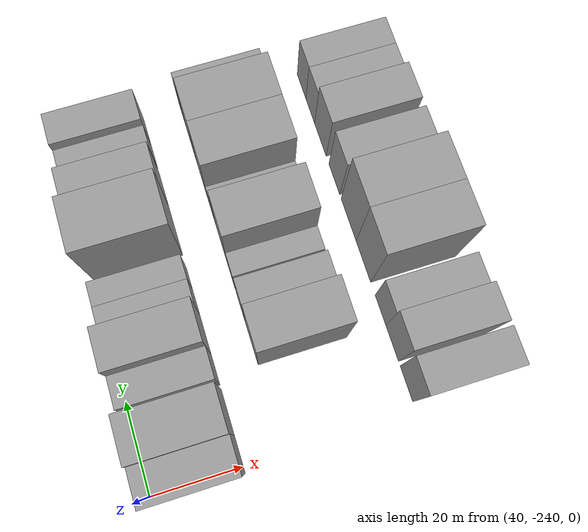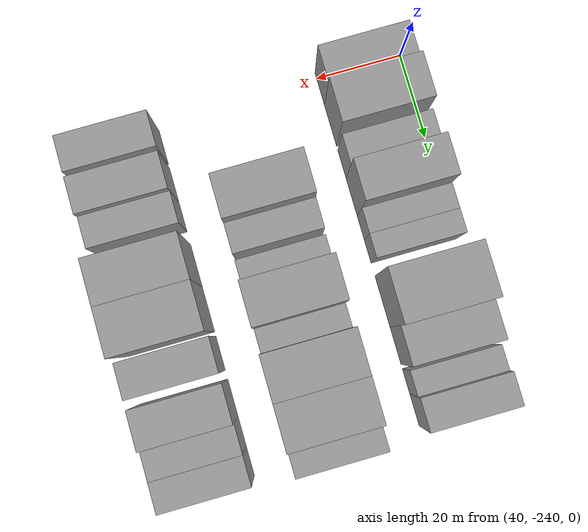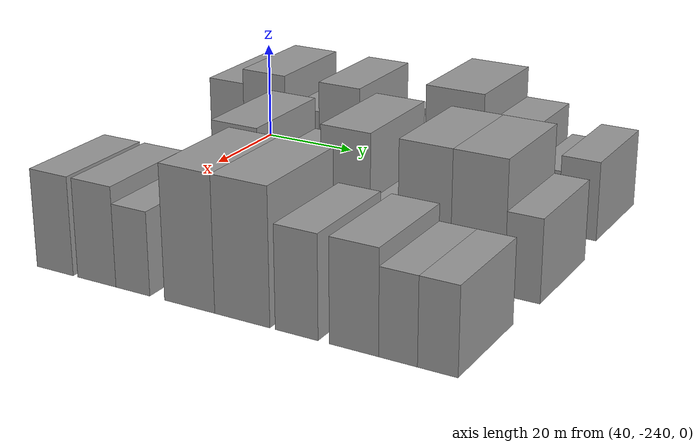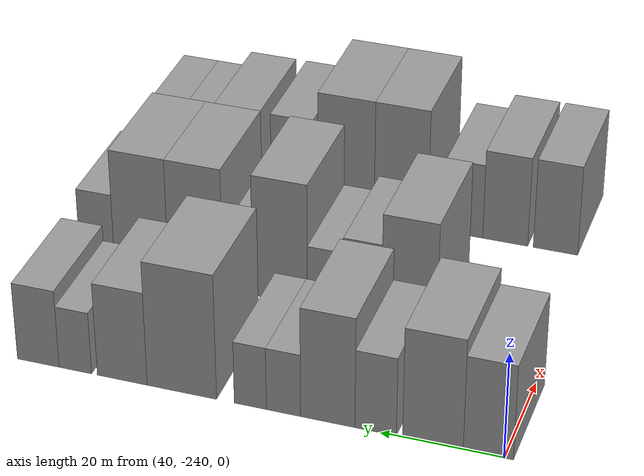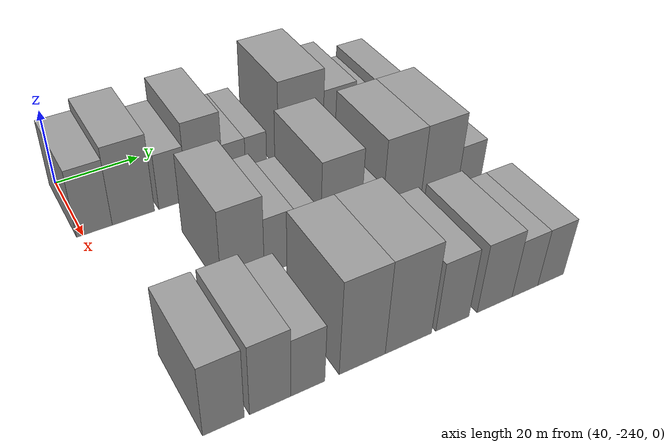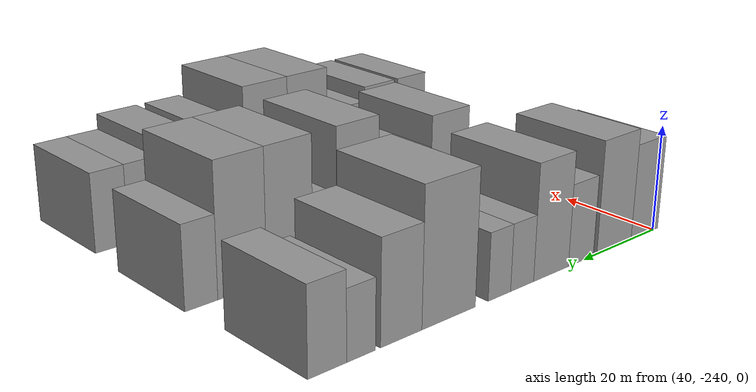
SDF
<sdf version="1.6">
 <world name="default">
  <model name="building_12">
   <static>1</static>
   <pose>50.0000 -237.4106 0 0.000000 0.000000 0.000000</pose>
   <link name="link">
    <pose>0 0 9.00 0 0 0</pose>
    <collision name="collision"><geometry><box><size>20.0000 8.0078 18.0000</size></box></geometry></collision>
    <visual name="visual">
     <cast_shadows>0</cast_shadows>
     <geometry><box><size>20.0000 8.0078 18.0000</size></box></geometry>
     <material>
      <script>
       <uri>model://grey_wall/materials/scripts</uri>
       <uri>model://grey_wall/materials/textures</uri>
       <name>vrc/grey_wall</name>
      </script>
     </material>
    </visual>
   </link>
  </model>
  <model name="building_13">
   <static>1</static>
   <pose>50.0000 -228.5051 0 0.000000 0.000000 0.000000</pose>
   <link name="link">
    <pose>0 0 10.50 0 0 0</pose>
    <collision name="collision"><geometry><box><size>20.0000 9.8033 21.0000</size></box></geometry></collision>
    <visual name="visual">
     <cast_shadows>0</cast_shadows>
     <geometry><box><size>20.0000 9.8033 21.0000</size></box></geometry>
     <material>
      <script>
       <uri>model://grey_wall/materials/scripts</uri>
       <uri>model://grey_wall/materials/textures</uri>
       <name>vrc/grey_wall</name>
      </script>
     </material>
    </visual>
   </link>
  </model>
  <model name="building_14">
   <static>1</static>
   <pose>50.0000 -219.2207 0 0.000000 0.000000 0.000000</pose>
   <link name="link">
    <pose>0 0 7.50 0 0 0</pose>
    <collision name="collision"><geometry><box><size>20.0000 6.7656 15.0000</size></box></geometry></collision>
    <visual name="visual">
     <cast_shadows>0</cast_shadows>
     <geometry><box><size>20.0000 6.7656 15.0000</size></box></geometry>
     <material>
      <script>
       <uri>model://grey_wall/materials/scripts</uri>
       <uri>model://grey_wall/materials/textures</uri>
       <name>vrc/grey_wall</name>
      </script>
     </material>
    </visual>
   </link>
  </model>
  <model name="building_15">
   <static>1</static>
   <pose>50.0000 -211.3232 0 0.000000 0.000000 0.000000</pose>
   <link name="link">
    <pose>0 0 10.50 0 0 0</pose>
    <collision name="collision"><geometry><box><size>20.0000 9.0295 21.0000</size></box></geometry></collision>
    <visual name="visual">
     <cast_shadows>0</cast_shadows>
     <geometry><box><size>20.0000 9.0295 21.0000</size></box></geometry>
     <material>
      <script>
       <uri>model://grey_wall/materials/scripts</uri>
       <uri>model://grey_wall/materials/textures</uri>
       <name>vrc/grey_wall</name>
      </script>
     </material>
    </visual>
   </link>
  </model>
  <model name="building_16">
   <static>1</static>
   <pose>50.0000 -203.9540 0 0.000000 0.000000 0.000000</pose>
   <link name="link">
    <pose>0 0 6.00 0 0 0</pose>
    <collision name="collision"><geometry><box><size>20.0000 5.7088 12.0000</size></box></geometry></collision>
    <visual name="visual">
     <cast_shadows>0</cast_shadows>
     <geometry><box><size>20.0000 5.7088 12.0000</size></box></geometry>
     <material>
      <script>
       <uri>model://grey_wall/materials/scripts</uri>
       <uri>model://grey_wall/materials/textures</uri>
       <name>vrc/grey_wall</name>
      </script>
     </material>
    </visual>
   </link>
  </model>
  <model name="building_17">
   <static>1</static>
   <pose>50.0000 -198.4020 0 0.000000 0.000000 0.000000</pose>
   <link name="link">
    <pose>0 0 6.00 0 0 0</pose>
    <collision name="collision"><geometry><box><size>20.0000 5.3952 12.0000</size></box></geometry></collision>
    <visual name="visual">
     <cast_shadows>0</cast_shadows>
     <geometry><box><size>20.0000 5.3952 12.0000</size></box></geometry>
     <material>
      <script>
       <uri>model://grey_wall/materials/scripts</uri>
       <uri>model://grey_wall/materials/textures</uri>
       <name>vrc/grey_wall</name>
      </script>
     </material>
    </visual>
   </link>
  </model>
  <model name="building_18">
   <static>1</static>
   <pose>50.0000 -186.7552 0 0.000000 0.000000 0.000000</pose>
   <link name="link">
    <pose>0 0 12.00 0 0 0</pose>
    <collision name="collision"><geometry><box><size>20.0000 11.8984 24.0000</size></box></geometry></collision>
    <visual name="visual">
     <cast_shadows>0</cast_shadows>
     <geometry><box><size>20.0000 11.8984 24.0000</size></box></geometry>
     <material>
      <script>
       <uri>model://grey_wall/materials/scripts</uri>
       <uri>model://grey_wall/materials/textures</uri>
       <name>vrc/grey_wall</name>
      </script>
     </material>
    </visual>
   </link>
  </model>
  <model name="building_19">
   <static>1</static>
   <pose>50.0000 -176.4865 0 0.000000 0.000000 0.000000</pose>
   <link name="link">
    <pose>0 0 9.00 0 0 0</pose>
    <collision name="collision"><geometry><box><size>20.0000 8.6390 18.0000</size></box></geometry></collision>
    <visual name="visual">
     <cast_shadows>0</cast_shadows>
     <geometry><box><size>20.0000 8.6390 18.0000</size></box></geometry>
     <material>
      <script>
       <uri>model://grey_wall/materials/scripts</uri>
       <uri>model://grey_wall/materials/textures</uri>
       <name>vrc/grey_wall</name>
      </script>
     </material>
    </visual>
   </link>
  </model>
  <model name="building_20">
   <static>1</static>
   <pose>50.0000 -168.3117 0 0.000000 0.000000 0.000000</pose>
   <link name="link">
    <pose>0 0 6.00 0 0 0</pose>
    <collision name="collision"><geometry><box><size>20.0000 5.7107 12.0000</size></box></geometry></collision>
    <visual name="visual">
     <cast_shadows>0</cast_shadows>
     <geometry><box><size>20.0000 5.7107 12.0000</size></box></geometry>
     <material>
      <script>
       <uri>model://grey_wall/materials/scripts</uri>
       <uri>model://grey_wall/materials/textures</uri>
       <name>vrc/grey_wall</name>
      </script>
     </material>
    </visual>
   </link>
  </model>
  <model name="building_21">
   <static>1</static>
   <pose>50.0000 -161.7797 0 0.000000 0.000000 0.000000</pose>
   <link name="link">
    <pose>0 0 7.50 0 0 0</pose>
    <collision name="collision"><geometry><box><size>20.0000 7.3533 15.0000</size></box></geometry></collision>
    <visual name="visual">
     <cast_shadows>0</cast_shadows>
     <geometry><box><size>20.0000 7.3533 15.0000</size></box></geometry>
     <material>
      <script>
       <uri>model://grey_wall/materials/scripts</uri>
       <uri>model://grey_wall/materials/textures</uri>
       <name>vrc/grey_wall</name>
      </script>
     </material>
    </visual>
   </link>
  </model>
  <model name="building_83">
   <static>1</static>
   <pose>79.0000 -216.0811 0 0.000000 0.000000 0.000000</pose>
   <link name="link">
    <pose>0 0 10.50 0 0 0</pose>
    <collision name="collision"><geometry><box><size>20.0000 9.6233 21.0000</size></box></geometry></collision>
    <visual name="visual">
     <cast_shadows>0</cast_shadows>
     <geometry><box><size>20.0000 9.6233 21.0000</size></box></geometry>
     <material>
      <script>
       <uri>model://grey_wall/materials/scripts</uri>
       <uri>model://grey_wall/materials/textures</uri>
       <name>vrc/grey_wall</name>
      </script>
     </material>
    </visual>
   </link>
  </model>
  <model name="building_84">
   <static>1</static>
   <pose>79.0000 -207.8913 0 0.000000 0.000000 0.000000</pose>
   <link name="link">
    <pose>0 0 7.50 0 0 0</pose>
    <collision name="collision"><geometry><box><size>20.0000 6.7563 15.0000</size></box></geometry></collision>
    <visual name="visual">
     <cast_shadows>0</cast_shadows>
     <geometry><box><size>20.0000 6.7563 15.0000</size></box></geometry>
     <material>
      <script>
       <uri>model://grey_wall/materials/scripts</uri>
       <uri>model://grey_wall/materials/textures</uri>
       <name>vrc/grey_wall</name>
      </script>
     </material>
    </visual>
   </link>
  </model>
  <model name="building_85">
   <static>1</static>
   <pose>79.0000 -200.8681 0 0.000000 0.000000 0.000000</pose>
   <link name="link">
    <pose>0 0 6.00 0 0 0</pose>
    <collision name="collision"><geometry><box><size>20.0000 5.2901 12.0000</size></box></geometry></collision>
    <visual name="visual">
     <cast_shadows>0</cast_shadows>
     <geometry><box><size>20.0000 5.2901 12.0000</size></box></geometry>
     <material>
      <script>
       <uri>model://grey_wall/materials/scripts</uri>
       <uri>model://grey_wall/materials/textures</uri>
       <name>vrc/grey_wall</name>
      </script>
     </material>
    </visual>
   </link>
  </model>
  <model name="building_86">
   <static>1</static>
   <pose>79.0000 -193.3429 0 0.000000 0.000000 0.000000</pose>
   <link name="link">
    <pose>0 0 12.00 0 0 0</pose>
    <collision name="collision"><geometry><box><size>20.0000 9.7604 24.0000</size></box></geometry></collision>
    <visual name="visual">
     <cast_shadows>0</cast_shadows>
     <geometry><box><size>20.0000 9.7604 24.0000</size></box></geometry>
     <material>
      <script>
       <uri>model://grey_wall/materials/scripts</uri>
       <uri>model://grey_wall/materials/textures</uri>
       <name>vrc/grey_wall</name>
      </script>
     </material>
    </visual>
   </link>
  </model>
  <model name="building_87">
   <static>1</static>
   <pose>79.0000 -185.7781 0 0.000000 0.000000 0.000000</pose>
   <link name="link">
    <pose>0 0 6.00 0 0 0</pose>
    <collision name="collision"><geometry><box><size>20.0000 5.3691 12.0000</size></box></geometry></collision>
    <visual name="visual">
     <cast_shadows>0</cast_shadows>
     <geometry><box><size>20.0000 5.3691 12.0000</size></box></geometry>
     <material>
      <script>
       <uri>model://grey_wall/materials/scripts</uri>
       <uri>model://grey_wall/materials/textures</uri>
       <name>vrc/grey_wall</name>
      </script>
     </material>
    </visual>
   </link>
  </model>
  <model name="building_88">
   <static>1</static>
   <pose>79.0000 -178.1216 0 0.000000 0.000000 0.000000</pose>
   <link name="link">
    <pose>0 0 12.00 0 0 0</pose>
    <collision name="collision"><geometry><box><size>20.0000 9.9440 24.0000</size></box></geometry></collision>
    <visual name="visual">
     <cast_shadows>0</cast_shadows>
     <geometry><box><size>20.0000 9.9440 24.0000</size></box></geometry>
     <material>
      <script>
       <uri>model://grey_wall/materials/scripts</uri>
       <uri>model://grey_wall/materials/textures</uri>
       <name>vrc/grey_wall</name>
      </script>
     </material>
    </visual>
   </link>
  </model>
  <model name="building_89">
   <static>1</static>
   <pose>79.0000 -168.1825 0 0.000000 0.000000 0.000000</pose>
   <link name="link">
    <pose>0 0 12.00 0 0 0</pose>
    <collision name="collision"><geometry><box><size>20.0000 9.9342 24.0000</size></box></geometry></collision>
    <visual name="visual">
     <cast_shadows>0</cast_shadows>
     <geometry><box><size>20.0000 9.9342 24.0000</size></box></geometry>
     <material>
      <script>
       <uri>model://grey_wall/materials/scripts</uri>
       <uri>model://grey_wall/materials/textures</uri>
       <name>vrc/grey_wall</name>
      </script>
     </material>
    </visual>
   </link>
  </model>
  <model name="building_90">
   <static>1</static>
   <pose>79.0000 -160.0171 0 0.000000 0.000000 0.000000</pose>
   <link name="link">
    <pose>0 0 7.50 0 0 0</pose>
    <collision name="collision"><geometry><box><size>20.0000 6.3967 15.0000</size></box></geometry></collision>
    <visual name="visual">
     <cast_shadows>0</cast_shadows>
     <geometry><box><size>20.0000 6.3967 15.0000</size></box></geometry>
     <material>
      <script>
       <uri>model://grey_wall/materials/scripts</uri>
       <uri>model://grey_wall/materials/textures</uri>
       <name>vrc/grey_wall</name>
      </script>
     </material>
    </visual>
   </link>
  </model>
  <model name="building_153">
   <static>1</static>
   <pose>108.0000 -234.0194 0 0.000000 0.000000 0.000000</pose>
   <link name="link">
    <pose>0 0 9.00 0 0 0</pose>
    <collision name="collision"><geometry><box><size>20.0000 7.9222 18.0000</size></box></geometry></collision>
    <visual name="visual">
     <cast_shadows>0</cast_shadows>
     <geometry><box><size>20.0000 7.9222 18.0000</size></box></geometry>
     <material>
      <script>
       <uri>model://grey_wall/materials/scripts</uri>
       <uri>model://grey_wall/materials/textures</uri>
       <name>vrc/grey_wall</name>
      </script>
     </material>
    </visual>
   </link>
  </model>
  <model name="building_154">
   <static>1</static>
   <pose>108.0000 -224.9918 0 0.000000 0.000000 0.000000</pose>
   <link name="link">
    <pose>0 0 9.00 0 0 0</pose>
    <collision name="collision"><geometry><box><size>20.0000 8.1330 18.0000</size></box></geometry></collision>
    <visual name="visual">
     <cast_shadows>0</cast_shadows>
     <geometry><box><size>20.0000 8.1330 18.0000</size></box></geometry>
     <material>
      <script>
       <uri>model://grey_wall/materials/scripts</uri>
       <uri>model://grey_wall/materials/textures</uri>
       <name>vrc/grey_wall</name>
      </script>
     </material>
    </visual>
   </link>
  </model>
  <model name="building_155">
   <static>1</static>
   <pose>108.0000 -217.4187 0 0.000000 0.000000 0.000000</pose>
   <link name="link">
    <pose>0 0 7.50 0 0 0</pose>
    <collision name="collision"><geometry><box><size>20.0000 7.0130 15.0000</size></box></geometry></collision>
    <visual name="visual">
     <cast_shadows>0</cast_shadows>
     <geometry><box><size>20.0000 7.0130 15.0000</size></box></geometry>
     <material>
      <script>
       <uri>model://grey_wall/materials/scripts</uri>
       <uri>model://grey_wall/materials/textures</uri>
       <name>vrc/grey_wall</name>
      </script>
     </material>
    </visual>
   </link>
  </model>
  <model name="building_156">
   <static>1</static>
   <pose>108.0000 -205.9382 0 0.000000 0.000000 0.000000</pose>
   <link name="link">
    <pose>0 0 12.00 0 0 0</pose>
    <collision name="collision"><geometry><box><size>20.0000 9.9480 24.0000</size></box></geometry></collision>
    <visual name="visual">
     <cast_shadows>0</cast_shadows>
     <geometry><box><size>20.0000 9.9480 24.0000</size></box></geometry>
     <material>
      <script>
       <uri>model://grey_wall/materials/scripts</uri>
       <uri>model://grey_wall/materials/textures</uri>
       <name>vrc/grey_wall</name>
      </script>
     </material>
    </visual>
   </link>
  </model>
  <model name="building_157">
   <static>1</static>
   <pose>108.0000 -195.7184 0 0.000000 0.000000 0.000000</pose>
   <link name="link">
    <pose>0 0 12.00 0 0 0</pose>
    <collision name="collision"><geometry><box><size>20.0000 10.4916 24.0000</size></box></geometry></collision>
    <visual name="visual">
     <cast_shadows>0</cast_shadows>
     <geometry><box><size>20.0000 10.4916 24.0000</size></box></geometry>
     <material>
      <script>
       <uri>model://grey_wall/materials/scripts</uri>
       <uri>model://grey_wall/materials/textures</uri>
       <name>vrc/grey_wall</name>
      </script>
     </material>
    </visual>
   </link>
  </model>
  <model name="building_158">
   <static>1</static>
   <pose>108.0000 -185.5544 0 0.000000 0.000000 0.000000</pose>
   <link name="link">
    <pose>0 0 9.00 0 0 0</pose>
    <collision name="collision"><geometry><box><size>20.0000 7.8365 18.0000</size></box></geometry></collision>
    <visual name="visual">
     <cast_shadows>0</cast_shadows>
     <geometry><box><size>20.0000 7.8365 18.0000</size></box></geometry>
     <material>
      <script>
       <uri>model://grey_wall/materials/scripts</uri>
       <uri>model://grey_wall/materials/textures</uri>
       <name>vrc/grey_wall</name>
      </script>
     </material>
    </visual>
   </link>
  </model>
  <model name="building_159">
   <static>1</static>
   <pose>108.0000 -175.3178 0 0.000000 0.000000 0.000000</pose>
   <link name="link">
    <pose>0 0 9.00 0 0 0</pose>
    <collision name="collision"><geometry><box><size>20.0000 8.6367 18.0000</size></box></geometry></collision>
    <visual name="visual">
     <cast_shadows>0</cast_shadows>
     <geometry><box><size>20.0000 8.6367 18.0000</size></box></geometry>
     <material>
      <script>
       <uri>model://grey_wall/materials/scripts</uri>
       <uri>model://grey_wall/materials/textures</uri>
       <name>vrc/grey_wall</name>
      </script>
     </material>
    </visual>
   </link>
  </model>
  <model name="building_160">
   <static>1</static>
   <pose>108.0000 -167.6961 0 0.000000 0.000000 0.000000</pose>
   <link name="link">
    <pose>0 0 7.50 0 0 0</pose>
    <collision name="collision"><geometry><box><size>20.0000 6.6065 15.0000</size></box></geometry></collision>
    <visual name="visual">
     <cast_shadows>0</cast_shadows>
     <geometry><box><size>20.0000 6.6065 15.0000</size></box></geometry>
     <material>
      <script>
       <uri>model://grey_wall/materials/scripts</uri>
       <uri>model://grey_wall/materials/textures</uri>
       <name>vrc/grey_wall</name>
      </script>
     </material>
    </visual>
   </link>
  </model>
  <model name="building_161">
   <static>1</static>
   <pose>108.0000 -161.0282 0 0.000000 0.000000 0.000000</pose>
   <link name="link">
    <pose>0 0 7.50 0 0 0</pose>
    <collision name="collision"><geometry><box><size>20.0000 6.7295 15.0000</size></box></geometry></collision>
    <visual name="visual">
     <cast_shadows>0</cast_shadows>
     <geometry><box><size>20.0000 6.7295 15.0000</size></box></geometry>
     <material>
      <script>
       <uri>model://grey_wall/materials/scripts</uri>
       <uri>model://grey_wall/materials/textures</uri>
       <name>vrc/grey_wall</name>
      </script>
     </material>
    </visual>
   </link>
  </model>
 </world>
</sdf>
